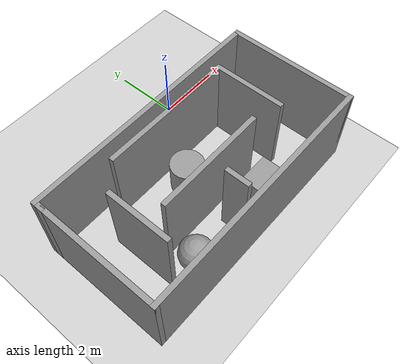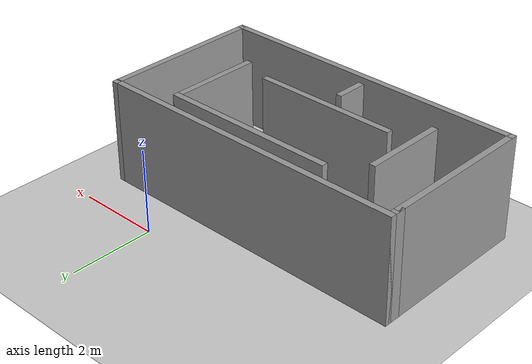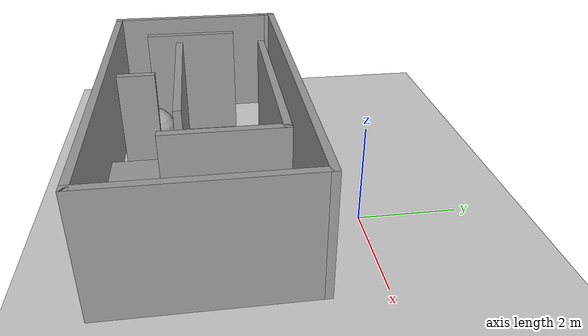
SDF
<sdf version="1.7">
 <world name="default">
  <light name="sun" type="directional">
   <pose>0 0 10 0 -0 0</pose>
   <diffuse>0.8 0.8 0.8 1</diffuse>
   <specular>0.2 0.2 0.2 1</specular>
   <attenuation>
    <range>1000</range>
    <constant>0.9</constant>
    <linear>0.01</linear>
    <quadratic>0.001</quadratic>
   </attenuation>
   <direction>-0.5 0.1 -0.9</direction>
   <spot><inner_angle>0</inner_angle><outer_angle>0</outer_angle><falloff>0</falloff></spot>
  </light>
  <model name="ground_plane">
   <static>1</static>
   <link name="link">
    <collision name="collision">
     <geometry><plane><normal>0 0 1</normal><size>100 100</size></plane></geometry>
     <surface>
      <contact><collide_bitmask>65535</collide_bitmask></contact>
      <friction><ode><mu>100</mu><mu2>50</mu2></ode></friction>
     </surface>
    </collision>
    <visual name="visual">
     <cast_shadows>0</cast_shadows>
     <geometry><plane><normal>0 0 1</normal><size>100 100</size></plane></geometry>
     <material>
      <script><uri>file://media/materials/scripts/gazebo.material</uri><name>Gazebo/Grey</name></script>
     </material>
    </visual>
   </link>
  </model>
  <gravity>0 0 -9.8</gravity>
  <magnetic_field>6e-06 2.3e-05 -4.2e-05</magnetic_field>
  <atmosphere type="adiabatic"/>
  <physics type="ode">
   <max_step_size>0.001</max_step_size>
   <real_time_factor>1</real_time_factor>
   <real_time_update_rate>1000</real_time_update_rate>
  </physics>
  <scene><ambient>0.4 0.4 0.4 1</ambient><background>0.7 0.7 0.7 1</background><shadows>1</shadows></scene>
  <spherical_coordinates>
   <surface_model>EARTH_WGS84</surface_model>
   <latitude_deg>0</latitude_deg>
   <longitude_deg>0</longitude_deg>
   <elevation>0</elevation>
   <heading_deg>0</heading_deg>
  </spherical_coordinates>
  <model name="maze">
   <pose>-1.8 -2.4875 0 0 -0 0</pose>
   <link name="Wall_0">
    <collision name="Wall_0_Collision">
     <geometry><box><size>3.75 0.15 2.5</size></box></geometry>
     <pose>0 0 1.25 0 -0 0</pose>
    </collision>
    <visual name="Wall_0_Visual">
     <pose>0 0 1.25 0 -0 0</pose>
     <geometry><box><size>3.75 0.15 2.5</size></box></geometry>
     <material>
      <script><uri>file://media/materials/scripts/gazebo.material</uri><name>Gazebo/Grey</name></script>
      <ambient>1 1 1 1</ambient>
     </material>
     <meta><layer>0</layer></meta>
    </visual>
    <pose>-3.8 -0.6125 0 0 -0 -1.5708</pose>
   </link>
   <link name="Wall_1">
    <collision name="Wall_1_Collision">
     <geometry><box><size>7.75 0.15 2.5</size></box></geometry>
     <pose>0 0 1.25 0 -0 0</pose>
    </collision>
    <visual name="Wall_1_Visual">
     <pose>0 0 1.25 0 -0 0</pose>
     <geometry><box><size>7.75 0.15 2.5</size></box></geometry>
     <material>
      <script><uri>file://media/materials/scripts/gazebo.material</uri><name>Gazebo/Grey</name></script>
      <ambient>1 1 1 1</ambient>
     </material>
     <meta><layer>0</layer></meta>
    </visual>
    <pose>0 -2.4125 0 0 -0 0</pose>
   </link>
   <link name="Wall_11">
    <collision name="Wall_11_Collision">
     <geometry><box><size>3.5 0.15 2.5</size></box></geometry>
     <pose>0 0 1.25 0 -0 0</pose>
    </collision>
    <visual name="Wall_11_Visual">
     <pose>0 0 1.25 0 -0 0</pose>
     <geometry><box><size>3.5 0.15 2.5</size></box></geometry>
     <material>
      <script><uri>file://media/materials/scripts/gazebo.material</uri><name>Gazebo/Grey</name></script>
      <ambient>1 1 1 1</ambient>
     </material>
     <meta><layer>0</layer></meta>
    </visual>
    <pose>-0.155 -0.8925 0 0 -0 0</pose>
   </link>
   <link name="Wall_13">
    <collision name="Wall_13_Collision">
     <geometry><box><size>0.75 0.15 2.5</size></box></geometry>
     <pose>0 0 1.25 0 -0 0</pose>
    </collision>
    <visual name="Wall_13_Visual">
     <pose>0 0 1.25 0 -0 0</pose>
     <geometry><box><size>0.75 0.15 2.5</size></box></geometry>
     <material>
      <script><uri>file://media/materials/scripts/gazebo.material</uri><name>Gazebo/Grey</name></script>
      <ambient>1 1 1 1</ambient>
     </material>
     <meta><layer>0</layer></meta>
    </visual>
    <pose>-0.14 -1.7325 0 0 -0 -1.5708</pose>
   </link>
   <link name="Wall_2">
    <collision name="Wall_2_Collision">
     <geometry><box><size>4 0.15 2.5</size></box></geometry>
     <pose>0 0 1.25 0 -0 0</pose>
    </collision>
    <visual name="Wall_2_Visual">
     <pose>0 0 1.25 0 -0 0</pose>
     <geometry><box><size>4 0.15 2.5</size></box></geometry>
     <material>
      <script><uri>file://media/materials/scripts/gazebo.material</uri><name>Gazebo/Grey</name></script>
      <ambient>1 1 1 1</ambient>
     </material>
     <meta><layer>0</layer></meta>
    </visual>
    <pose>3.8 -0.4875 0 0 -0 1.5708</pose>
   </link>
   <link name="Wall_3">
    <collision name="Wall_3_Collision">
     <geometry><box><size>7.75 0.15 2.5</size></box></geometry>
     <pose>0 0 1.25 0 -0 0</pose>
    </collision>
    <visual name="Wall_3_Visual">
     <pose>0 0 1.25 0 -0 0</pose>
     <geometry><box><size>7.75 0.15 2.5</size></box></geometry>
     <material>
      <script><uri>file://media/materials/scripts/gazebo.material</uri><name>Gazebo/Grey</name></script>
      <ambient>1 1 1 1</ambient>
     </material>
     <meta><layer>0</layer></meta>
    </visual>
    <pose>0 1.4375 0 0 -0 3.14159</pose>
   </link>
   <link name="Wall_4">
    <collision name="Wall_4_Collision">
     <geometry><box><size>0.4 0.15 2.5</size></box></geometry>
     <pose>0 0 1.25 0 -0 0</pose>
    </collision>
    <visual name="Wall_4_Visual">
     <pose>0 0 1.25 0 -0 0</pose>
     <geometry><box><size>0.4 0.15 2.5</size></box></geometry>
     <material>
      <script><uri>file://media/materials/scripts/gazebo.material</uri><name>Gazebo/Grey</name></script>
      <ambient>1 1 1 1</ambient>
     </material>
     <meta><layer>0</layer></meta>
    </visual>
    <pose>-3.8 1.3125 0 0 -0 -1.5708</pose>
   </link>
   <link name="Wall_6">
    <collision name="Wall_6_Collision">
     <geometry><box><size>4.25 0.15 2.5</size></box></geometry>
     <pose>0 0 1.25 0 -0 0</pose>
    </collision>
    <visual name="Wall_6_Visual">
     <pose>0 0 1.25 0 -0 0</pose>
     <geometry><box><size>4.25 0.15 2.5</size></box></geometry>
     <material>
      <script><uri>file://media/materials/scripts/gazebo.material</uri><name>Gazebo/Grey</name></script>
      <ambient>1 1 1 1</ambient>
     </material>
     <meta><layer>0</layer></meta>
    </visual>
    <pose>0.33 0.9575 0 0 -0 0</pose>
   </link>
   <link name="Wall_7">
    <collision name="Wall_7_Collision">
     <geometry><box><size>2.25 0.15 2.5</size></box></geometry>
     <pose>0 0 1.25 0 -0 0</pose>
    </collision>
    <visual name="Wall_7_Visual">
     <pose>0 0 1.25 0 -0 0</pose>
     <geometry><box><size>2.25 0.15 2.5</size></box></geometry>
     <material>
      <script><uri>file://media/materials/scripts/gazebo.material</uri><name>Gazebo/Grey</name></script>
      <ambient>1 1 1 1</ambient>
     </material>
     <meta><layer>0</layer></meta>
    </visual>
    <pose>2.38 -0.0925 0 0 -0 -1.5708</pose>
   </link>
   <link name="Wall_9">
    <collision name="Wall_9_Collision">
     <geometry><box><size>2 0.15 2.5</size></box></geometry>
     <pose>0 0 1.25 0 -0 0</pose>
    </collision>
    <visual name="Wall_9_Visual">
     <pose>0 0 1.25 0 -0 0</pose>
     <geometry><box><size>2 0.15 2.5</size></box></geometry>
     <material>
      <script><uri>file://media/materials/scripts/gazebo.material</uri><name>Gazebo/Grey</name></script>
      <ambient>1 1 1 1</ambient>
     </material>
     <meta><layer>0</layer></meta>
    </visual>
    <pose>-2.48 -0.6375 0 0 -0 -1.5708</pose>
   </link>
   <static>1</static>
  </model>
  <model name="unit_box">
   <pose>-0.620745 -4.27939 0.499995 0 1e-05 0</pose>
   <link name="link">
    <inertial>
     <mass>1</mass>
     <inertia>
      <ixx>0.166667</ixx>
      <ixy>0</ixy>
      <ixz>0</ixz>
      <iyy>0.166667</iyy>
      <iyz>0</iyz>
      <izz>0.166667</izz>
     </inertia>
    </inertial>
    <collision name="collision"><geometry><box><size>1 1 1</size></box></geometry></collision>
    <visual name="visual">
     <geometry><box><size>1 1 1</size></box></geometry>
     <material>
      <script><name>Gazebo/Grey</name><uri>file://media/materials/scripts/gazebo.material</uri></script>
     </material>
    </visual>
   </link>
  </model>
  <model name="unit_cylinder">
   <pose>-1.70204 -2.32174 0.499993 -3e-06 -4e-06 -0</pose>
   <link name="link">
    <inertial>
     <mass>1</mass>
     <inertia><ixx>0.145833</ixx><ixy>0</ixy><ixz>0</ixz><iyy>0.145833</iyy><iyz>0</iyz><izz>0.125</izz></inertia>
    </inertial>
    <collision name="collision">
     <geometry><cylinder><radius>0.5</radius><length>1</length></cylinder></geometry>
    </collision>
    <visual name="visual">
     <geometry><cylinder><radius>0.5</radius><length>1</length></cylinder></geometry>
     <material>
      <script><name>Gazebo/Grey</name><uri>file://media/materials/scripts/gazebo.material</uri></script>
     </material>
    </visual>
   </link>
  </model>
  <model name="unit_sphere">
   <pose>-3.41457 -4.13199 0.5 0 -0 0</pose>
   <link name="link">
    <inertial>
     <mass>1</mass>
     <inertia><ixx>0.1</ixx><ixy>0</ixy><ixz>0</ixz><iyy>0.1</iyy><iyz>0</iyz><izz>0.1</izz></inertia>
    </inertial>
    <collision name="collision"><geometry><sphere><radius>0.5</radius></sphere></geometry></collision>
    <visual name="visual">
     <geometry><sphere><radius>0.5</radius></sphere></geometry>
     <material>
      <script><name>Gazebo/Grey</name><uri>file://media/materials/scripts/gazebo.material</uri></script>
     </material>
    </visual>
   </link>
  </model>
 </world>
</sdf>
